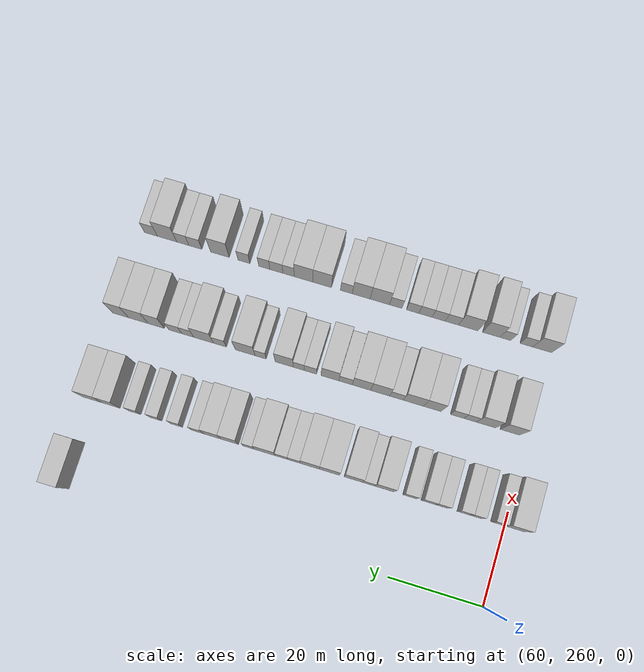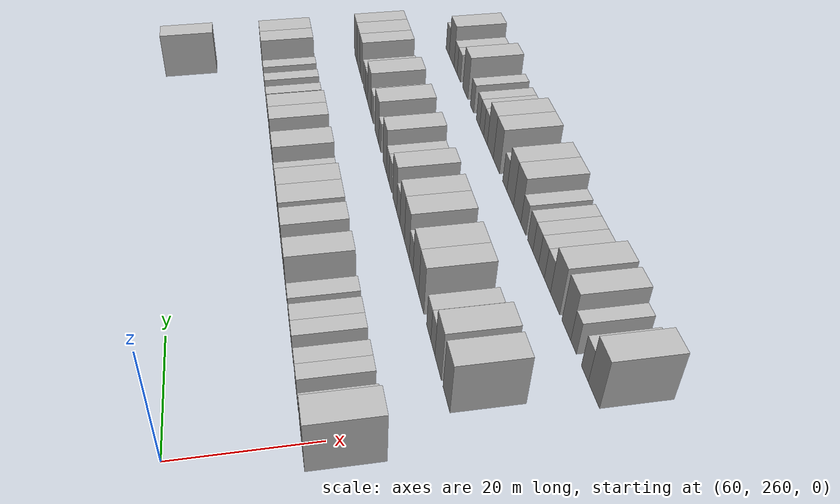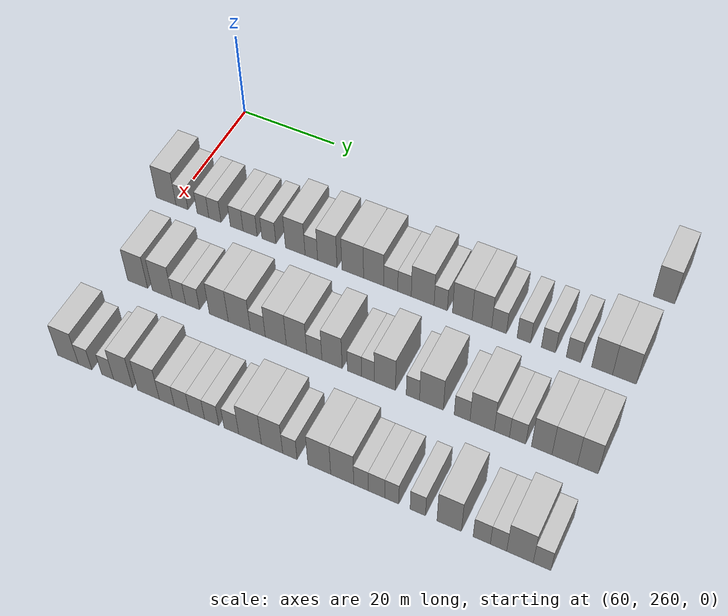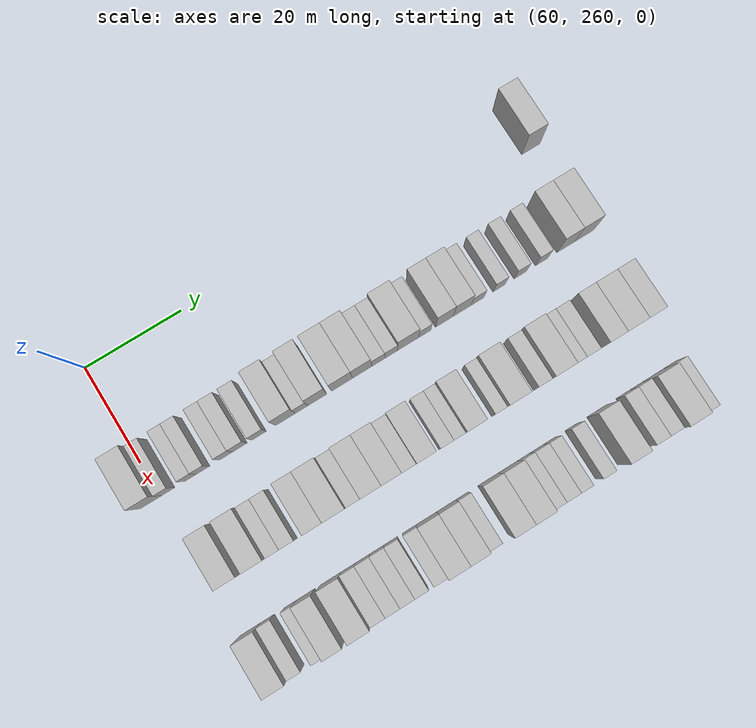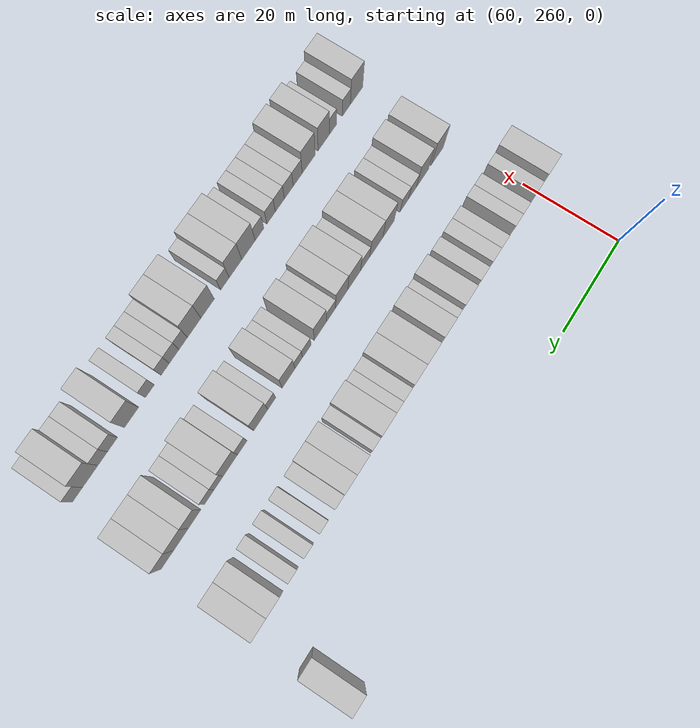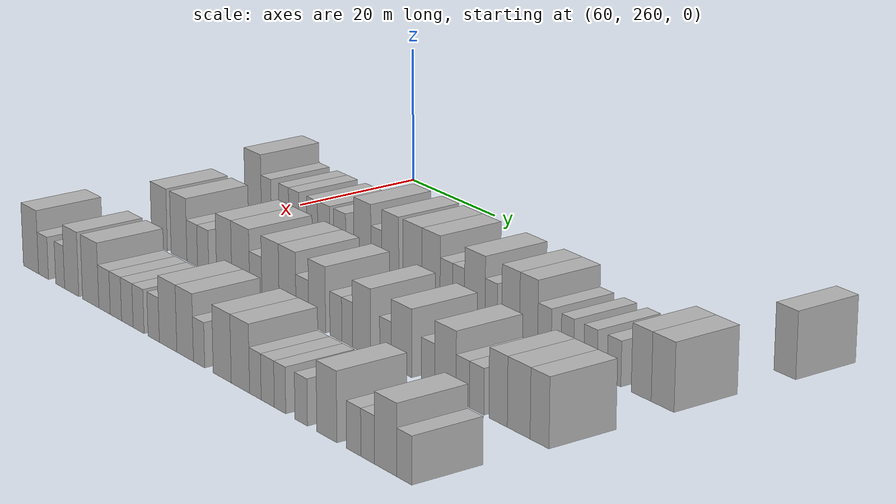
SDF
<sdf version="1.6">
 <world name="default">
  <model name="building_496">
   <static>1</static>
   <pose>63.0000 350.2787 0 0.000000 0.000000 0.000000</pose>
   <link name="link">
    <pose>0 0 4.50 0 0 0</pose>
    <collision name="collision"><geometry><box><size>10.0000 3.9920 9.0000</size></box></geometry></collision>
    <visual name="visual">
     <cast_shadows>0</cast_shadows>
     <geometry><box><size>10.0000 3.9920 9.0000</size></box></geometry>
     <material>
      <script>
       <uri>model://HANNAS_wall/materials/scripts</uri>
       <uri>model://HANNAS_wall/materials/textures</uri>
       <name>vrc/HANNAS_wall</name>
      </script>
     </material>
    </visual>
   </link>
  </model>
  <model name="building_649">
   <static>1</static>
   <pose>82.0000 258.2778 0 0.000000 0.000000 0.000000</pose>
   <link name="link">
    <pose>0 0 4.50 0 0 0</pose>
    <collision name="collision"><geometry><box><size>10.0000 4.3512 9.0000</size></box></geometry></collision>
    <visual name="visual">
     <cast_shadows>0</cast_shadows>
     <geometry><box><size>10.0000 4.3512 9.0000</size></box></geometry>
     <material>
      <script>
       <uri>model://HANNAS_wall/materials/scripts</uri>
       <uri>model://HANNAS_wall/materials/textures</uri>
       <name>vrc/HANNAS_wall</name>
      </script>
     </material>
    </visual>
   </link>
  </model>
  <model name="building_650">
   <static>1</static>
   <pose>82.0000 261.7643 0 0.000000 0.000000 0.000000</pose>
   <link name="link">
    <pose>0 0 3.00 0 0 0</pose>
    <collision name="collision"><geometry><box><size>10.0000 2.6217 6.0000</size></box></geometry></collision>
    <visual name="visual">
     <cast_shadows>0</cast_shadows>
     <geometry><box><size>10.0000 2.6217 6.0000</size></box></geometry>
     <material>
      <script>
       <uri>model://HANNAS_wall/materials/scripts</uri>
       <uri>model://HANNAS_wall/materials/textures</uri>
       <name>vrc/HANNAS_wall</name>
      </script>
     </material>
    </visual>
   </link>
  </model>
  <model name="building_651">
   <static>1</static>
   <pose>82.0000 266.3495 0 0.000000 0.000000 0.000000</pose>
   <link name="link">
    <pose>0 0 3.00 0 0 0</pose>
    <collision name="collision"><geometry><box><size>10.0000 2.5487 6.0000</size></box></geometry></collision>
    <visual name="visual">
     <cast_shadows>0</cast_shadows>
     <geometry><box><size>10.0000 2.5487 6.0000</size></box></geometry>
     <material>
      <script>
       <uri>model://HANNAS_wall/materials/scripts</uri>
       <uri>model://HANNAS_wall/materials/textures</uri>
       <name>vrc/HANNAS_wall</name>
      </script>
     </material>
    </visual>
   </link>
  </model>
  <model name="building_652">
   <static>1</static>
   <pose>82.0000 268.9400 0 0.000000 0.000000 0.000000</pose>
   <link name="link">
    <pose>0 0 3.00 0 0 0</pose>
    <collision name="collision"><geometry><box><size>10.0000 2.6323 6.0000</size></box></geometry></collision>
    <visual name="visual">
     <cast_shadows>0</cast_shadows>
     <geometry><box><size>10.0000 2.6323 6.0000</size></box></geometry>
     <material>
      <script>
       <uri>model://HANNAS_wall/materials/scripts</uri>
       <uri>model://HANNAS_wall/materials/textures</uri>
       <name>vrc/HANNAS_wall</name>
      </script>
     </material>
    </visual>
   </link>
  </model>
  <model name="building_653">
   <static>1</static>
   <pose>82.0000 273.6161 0 0.000000 0.000000 0.000000</pose>
   <link name="link">
    <pose>0 0 3.00 0 0 0</pose>
    <collision name="collision"><geometry><box><size>10.0000 2.7197 6.0000</size></box></geometry></collision>
    <visual name="visual">
     <cast_shadows>0</cast_shadows>
     <geometry><box><size>10.0000 2.7197 6.0000</size></box></geometry>
     <material>
      <script>
       <uri>model://HANNAS_wall/materials/scripts</uri>
       <uri>model://HANNAS_wall/materials/textures</uri>
       <name>vrc/HANNAS_wall</name>
      </script>
     </material>
    </visual>
   </link>
  </model>
  <model name="building_654">
   <static>1</static>
   <pose>82.0000 276.4686 0 0.000000 0.000000 0.000000</pose>
   <link name="link">
    <pose>0 0 3.00 0 0 0</pose>
    <collision name="collision"><geometry><box><size>10.0000 2.9853 6.0000</size></box></geometry></collision>
    <visual name="visual">
     <cast_shadows>0</cast_shadows>
     <geometry><box><size>10.0000 2.9853 6.0000</size></box></geometry>
     <material>
      <script>
       <uri>model://HANNAS_wall/materials/scripts</uri>
       <uri>model://HANNAS_wall/materials/textures</uri>
       <name>vrc/HANNAS_wall</name>
      </script>
     </material>
    </visual>
   </link>
  </model>
  <model name="building_655">
   <static>1</static>
   <pose>82.0000 280.4330 0 0.000000 0.000000 0.000000</pose>
   <link name="link">
    <pose>0 0 3.00 0 0 0</pose>
    <collision name="collision"><geometry><box><size>10.0000 2.9435 6.0000</size></box></geometry></collision>
    <visual name="visual">
     <cast_shadows>0</cast_shadows>
     <geometry><box><size>10.0000 2.9435 6.0000</size></box></geometry>
     <material>
      <script>
       <uri>model://HANNAS_wall/materials/scripts</uri>
       <uri>model://HANNAS_wall/materials/textures</uri>
       <name>vrc/HANNAS_wall</name>
      </script>
     </material>
    </visual>
   </link>
  </model>
  <model name="building_656">
   <static>1</static>
   <pose>82.0000 285.9471 0 0.000000 0.000000 0.000000</pose>
   <link name="link">
    <pose>0 0 4.50 0 0 0</pose>
    <collision name="collision"><geometry><box><size>10.0000 4.0847 9.0000</size></box></geometry></collision>
    <visual name="visual">
     <cast_shadows>0</cast_shadows>
     <geometry><box><size>10.0000 4.0847 9.0000</size></box></geometry>
     <material>
      <script>
       <uri>model://HANNAS_wall/materials/scripts</uri>
       <uri>model://HANNAS_wall/materials/textures</uri>
       <name>vrc/HANNAS_wall</name>
      </script>
     </material>
    </visual>
   </link>
  </model>
  <model name="building_657">
   <static>1</static>
   <pose>82.0000 289.2832 0 0.000000 0.000000 0.000000</pose>
   <link name="link">
    <pose>0 0 3.00 0 0 0</pose>
    <collision name="collision"><geometry><box><size>10.0000 2.5873 6.0000</size></box></geometry></collision>
    <visual name="visual">
     <cast_shadows>0</cast_shadows>
     <geometry><box><size>10.0000 2.5873 6.0000</size></box></geometry>
     <material>
      <script>
       <uri>model://HANNAS_wall/materials/scripts</uri>
       <uri>model://HANNAS_wall/materials/textures</uri>
       <name>vrc/HANNAS_wall</name>
      </script>
     </material>
    </visual>
   </link>
  </model>
  <model name="building_658">
   <static>1</static>
   <pose>82.0000 292.5606 0 0.000000 0.000000 0.000000</pose>
   <link name="link">
    <pose>0 0 4.50 0 0 0</pose>
    <collision name="collision"><geometry><box><size>10.0000 3.9675 9.0000</size></box></geometry></collision>
    <visual name="visual">
     <cast_shadows>0</cast_shadows>
     <geometry><box><size>10.0000 3.9675 9.0000</size></box></geometry>
     <material>
      <script>
       <uri>model://HANNAS_wall/materials/scripts</uri>
       <uri>model://HANNAS_wall/materials/textures</uri>
       <name>vrc/HANNAS_wall</name>
      </script>
     </material>
    </visual>
   </link>
  </model>
  <model name="building_659">
   <static>1</static>
   <pose>82.0000 297.7353 0 0.000000 0.000000 0.000000</pose>
   <link name="link">
    <pose>0 0 4.50 0 0 0</pose>
    <collision name="collision"><geometry><box><size>10.0000 4.3819 9.0000</size></box></geometry></collision>
    <visual name="visual">
     <cast_shadows>0</cast_shadows>
     <geometry><box><size>10.0000 4.3819 9.0000</size></box></geometry>
     <material>
      <script>
       <uri>model://HANNAS_wall/materials/scripts</uri>
       <uri>model://HANNAS_wall/materials/textures</uri>
       <name>vrc/HANNAS_wall</name>
      </script>
     </material>
    </visual>
   </link>
  </model>
  <model name="building_660">
   <static>1</static>
   <pose>82.0000 301.9614 0 0.000000 0.000000 0.000000</pose>
   <link name="link">
    <pose>0 0 4.50 0 0 0</pose>
    <collision name="collision"><geometry><box><size>10.0000 4.0702 9.0000</size></box></geometry></collision>
    <visual name="visual">
     <cast_shadows>0</cast_shadows>
     <geometry><box><size>10.0000 4.0702 9.0000</size></box></geometry>
     <material>
      <script>
       <uri>model://HANNAS_wall/materials/scripts</uri>
       <uri>model://HANNAS_wall/materials/textures</uri>
       <name>vrc/HANNAS_wall</name>
      </script>
     </material>
    </visual>
   </link>
  </model>
  <model name="building_661">
   <static>1</static>
   <pose>82.0000 305.3838 0 0.000000 0.000000 0.000000</pose>
   <link name="link">
    <pose>0 0 3.00 0 0 0</pose>
    <collision name="collision"><geometry><box><size>10.0000 2.7748 6.0000</size></box></geometry></collision>
    <visual name="visual">
     <cast_shadows>0</cast_shadows>
     <geometry><box><size>10.0000 2.7748 6.0000</size></box></geometry>
     <material>
      <script>
       <uri>model://HANNAS_wall/materials/scripts</uri>
       <uri>model://HANNAS_wall/materials/textures</uri>
       <name>vrc/HANNAS_wall</name>
      </script>
     </material>
    </visual>
   </link>
  </model>
  <model name="building_662">
   <static>1</static>
   <pose>82.0000 308.1026 0 0.000000 0.000000 0.000000</pose>
   <link name="link">
    <pose>0 0 3.00 0 0 0</pose>
    <collision name="collision"><geometry><box><size>10.0000 2.6628 6.0000</size></box></geometry></collision>
    <visual name="visual">
     <cast_shadows>0</cast_shadows>
     <geometry><box><size>10.0000 2.6628 6.0000</size></box></geometry>
     <material>
      <script>
       <uri>model://HANNAS_wall/materials/scripts</uri>
       <uri>model://HANNAS_wall/materials/textures</uri>
       <name>vrc/HANNAS_wall</name>
      </script>
     </material>
    </visual>
   </link>
  </model>
  <model name="building_663">
   <static>1</static>
   <pose>82.0000 311.6746 0 0.000000 0.000000 0.000000</pose>
   <link name="link">
    <pose>0 0 4.50 0 0 0</pose>
    <collision name="collision"><geometry><box><size>10.0000 4.4812 9.0000</size></box></geometry></collision>
    <visual name="visual">
     <cast_shadows>0</cast_shadows>
     <geometry><box><size>10.0000 4.4812 9.0000</size></box></geometry>
     <material>
      <script>
       <uri>model://HANNAS_wall/materials/scripts</uri>
       <uri>model://HANNAS_wall/materials/textures</uri>
       <name>vrc/HANNAS_wall</name>
      </script>
     </material>
    </visual>
   </link>
  </model>
  <model name="building_664">
   <static>1</static>
   <pose>82.0000 315.2005 0 0.000000 0.000000 0.000000</pose>
   <link name="link">
    <pose>0 0 3.00 0 0 0</pose>
    <collision name="collision"><geometry><box><size>10.0000 2.5705 6.0000</size></box></geometry></collision>
    <visual name="visual">
     <cast_shadows>0</cast_shadows>
     <geometry><box><size>10.0000 2.5705 6.0000</size></box></geometry>
     <material>
      <script>
       <uri>model://HANNAS_wall/materials/scripts</uri>
       <uri>model://HANNAS_wall/materials/textures</uri>
       <name>vrc/HANNAS_wall</name>
      </script>
     </material>
    </visual>
   </link>
  </model>
  <model name="building_665">
   <static>1</static>
   <pose>82.0000 319.3725 0 0.000000 0.000000 0.000000</pose>
   <link name="link">
    <pose>0 0 4.50 0 0 0</pose>
    <collision name="collision"><geometry><box><size>10.0000 3.7735 9.0000</size></box></geometry></collision>
    <visual name="visual">
     <cast_shadows>0</cast_shadows>
     <geometry><box><size>10.0000 3.7735 9.0000</size></box></geometry>
     <material>
      <script>
       <uri>model://HANNAS_wall/materials/scripts</uri>
       <uri>model://HANNAS_wall/materials/textures</uri>
       <name>vrc/HANNAS_wall</name>
      </script>
     </material>
    </visual>
   </link>
  </model>
  <model name="building_666">
   <static>1</static>
   <pose>82.0000 323.1352 0 0.000000 0.000000 0.000000</pose>
   <link name="link">
    <pose>0 0 4.50 0 0 0</pose>
    <collision name="collision"><geometry><box><size>10.0000 3.7519 9.0000</size></box></geometry></collision>
    <visual name="visual">
     <cast_shadows>0</cast_shadows>
     <geometry><box><size>10.0000 3.7519 9.0000</size></box></geometry>
     <material>
      <script>
       <uri>model://HANNAS_wall/materials/scripts</uri>
       <uri>model://HANNAS_wall/materials/textures</uri>
       <name>vrc/HANNAS_wall</name>
      </script>
     </material>
    </visual>
   </link>
  </model>
  <model name="building_667">
   <static>1</static>
   <pose>82.0000 326.4109 0 0.000000 0.000000 0.000000</pose>
   <link name="link">
    <pose>0 0 3.00 0 0 0</pose>
    <collision name="collision"><geometry><box><size>10.0000 2.7996 6.0000</size></box></geometry></collision>
    <visual name="visual">
     <cast_shadows>0</cast_shadows>
     <geometry><box><size>10.0000 2.7996 6.0000</size></box></geometry>
     <material>
      <script>
       <uri>model://HANNAS_wall/materials/scripts</uri>
       <uri>model://HANNAS_wall/materials/textures</uri>
       <name>vrc/HANNAS_wall</name>
      </script>
     </material>
    </visual>
   </link>
  </model>
  <model name="building_668">
   <static>1</static>
   <pose>82.0000 331.0889 0 0.000000 0.000000 0.000000</pose>
   <link name="link">
    <pose>0 0 3.00 0 0 0</pose>
    <collision name="collision"><geometry><box><size>10.0000 2.5564 6.0000</size></box></geometry></collision>
    <visual name="visual">
     <cast_shadows>0</cast_shadows>
     <geometry><box><size>10.0000 2.5564 6.0000</size></box></geometry>
     <material>
      <script>
       <uri>model://HANNAS_wall/materials/scripts</uri>
       <uri>model://HANNAS_wall/materials/textures</uri>
       <name>vrc/HANNAS_wall</name>
      </script>
     </material>
    </visual>
   </link>
  </model>
  <model name="building_669">
   <static>1</static>
   <pose>82.0000 335.6795 0 0.000000 0.000000 0.000000</pose>
   <link name="link">
    <pose>0 0 3.00 0 0 0</pose>
    <collision name="collision"><geometry><box><size>10.0000 2.6247 6.0000</size></box></geometry></collision>
    <visual name="visual">
     <cast_shadows>0</cast_shadows>
     <geometry><box><size>10.0000 2.6247 6.0000</size></box></geometry>
     <material>
      <script>
       <uri>model://HANNAS_wall/materials/scripts</uri>
       <uri>model://HANNAS_wall/materials/textures</uri>
       <name>vrc/HANNAS_wall</name>
      </script>
     </material>
    </visual>
   </link>
  </model>
  <model name="building_670">
   <static>1</static>
   <pose>82.0000 340.3127 0 0.000000 0.000000 0.000000</pose>
   <link name="link">
    <pose>0 0 3.00 0 0 0</pose>
    <collision name="collision"><geometry><box><size>10.0000 2.6416 6.0000</size></box></geometry></collision>
    <visual name="visual">
     <cast_shadows>0</cast_shadows>
     <geometry><box><size>10.0000 2.6416 6.0000</size></box></geometry>
     <material>
      <script>
       <uri>model://HANNAS_wall/materials/scripts</uri>
       <uri>model://HANNAS_wall/materials/textures</uri>
       <name>vrc/HANNAS_wall</name>
      </script>
     </material>
    </visual>
   </link>
  </model>
  <model name="building_671">
   <static>1</static>
   <pose>82.0000 345.5279 0 0.000000 0.000000 0.000000</pose>
   <link name="link">
    <pose>0 0 4.50 0 0 0</pose>
    <collision name="collision"><geometry><box><size>10.0000 3.7888 9.0000</size></box></geometry></collision>
    <visual name="visual">
     <cast_shadows>0</cast_shadows>
     <geometry><box><size>10.0000 3.7888 9.0000</size></box></geometry>
     <material>
      <script>
       <uri>model://HANNAS_wall/materials/scripts</uri>
       <uri>model://HANNAS_wall/materials/textures</uri>
       <name>vrc/HANNAS_wall</name>
      </script>
     </material>
    </visual>
   </link>
  </model>
  <model name="building_672">
   <static>1</static>
   <pose>82.0000 349.5609 0 0.000000 0.000000 0.000000</pose>
   <link name="link">
    <pose>0 0 4.50 0 0 0</pose>
    <collision name="collision"><geometry><box><size>10.0000 4.2771 9.0000</size></box></geometry></collision>
    <visual name="visual">
     <cast_shadows>0</cast_shadows>
     <geometry><box><size>10.0000 4.2771 9.0000</size></box></geometry>
     <material>
      <script>
       <uri>model://HANNAS_wall/materials/scripts</uri>
       <uri>model://HANNAS_wall/materials/textures</uri>
       <name>vrc/HANNAS_wall</name>
      </script>
     </material>
    </visual>
   </link>
  </model>
  <model name="building_822">
   <static>1</static>
   <pose>101.0000 264.0049 0 0.000000 0.000000 0.000000</pose>
   <link name="link">
    <pose>0 0 4.50 0 0 0</pose>
    <collision name="collision"><geometry><box><size>10.0000 4.1957 9.0000</size></box></geometry></collision>
    <visual name="visual">
     <cast_shadows>0</cast_shadows>
     <geometry><box><size>10.0000 4.1957 9.0000</size></box></geometry>
     <material>
      <script>
       <uri>model://HANNAS_wall/materials/scripts</uri>
       <uri>model://HANNAS_wall/materials/textures</uri>
       <name>vrc/HANNAS_wall</name>
      </script>
     </material>
    </visual>
   </link>
  </model>
  <model name="building_823">
   <static>1</static>
   <pose>101.0000 269.1929 0 0.000000 0.000000 0.000000</pose>
   <link name="link">
    <pose>0 0 4.50 0 0 0</pose>
    <collision name="collision"><geometry><box><size>10.0000 4.1804 9.0000</size></box></geometry></collision>
    <visual name="visual">
     <cast_shadows>0</cast_shadows>
     <geometry><box><size>10.0000 4.1804 9.0000</size></box></geometry>
     <material>
      <script>
       <uri>model://HANNAS_wall/materials/scripts</uri>
       <uri>model://HANNAS_wall/materials/textures</uri>
       <name>vrc/HANNAS_wall</name>
      </script>
     </material>
    </visual>
   </link>
  </model>
  <model name="building_824">
   <static>1</static>
   <pose>101.0000 272.6588 0 0.000000 0.000000 0.000000</pose>
   <link name="link">
    <pose>0 0 3.00 0 0 0</pose>
    <collision name="collision"><geometry><box><size>10.0000 2.7513 6.0000</size></box></geometry></collision>
    <visual name="visual">
     <cast_shadows>0</cast_shadows>
     <geometry><box><size>10.0000 2.7513 6.0000</size></box></geometry>
     <material>
      <script>
       <uri>model://HANNAS_wall/materials/scripts</uri>
       <uri>model://HANNAS_wall/materials/textures</uri>
       <name>vrc/HANNAS_wall</name>
      </script>
     </material>
    </visual>
   </link>
  </model>
  <model name="building_825">
   <static>1</static>
   <pose>101.0000 275.4788 0 0.000000 0.000000 0.000000</pose>
   <link name="link">
    <pose>0 0 3.00 0 0 0</pose>
    <collision name="collision"><geometry><box><size>10.0000 2.8886 6.0000</size></box></geometry></collision>
    <visual name="visual">
     <cast_shadows>0</cast_shadows>
     <geometry><box><size>10.0000 2.8886 6.0000</size></box></geometry>
     <material>
      <script>
       <uri>model://HANNAS_wall/materials/scripts</uri>
       <uri>model://HANNAS_wall/materials/textures</uri>
       <name>vrc/HANNAS_wall</name>
      </script>
     </material>
    </visual>
   </link>
  </model>
  <model name="building_826">
   <static>1</static>
   <pose>101.0000 280.8475 0 0.000000 0.000000 0.000000</pose>
   <link name="link">
    <pose>0 0 4.50 0 0 0</pose>
    <collision name="collision"><geometry><box><size>10.0000 3.8488 9.0000</size></box></geometry></collision>
    <visual name="visual">
     <cast_shadows>0</cast_shadows>
     <geometry><box><size>10.0000 3.8488 9.0000</size></box></geometry>
     <material>
      <script>
       <uri>model://HANNAS_wall/materials/scripts</uri>
       <uri>model://HANNAS_wall/materials/textures</uri>
       <name>vrc/HANNAS_wall</name>
      </script>
     </material>
    </visual>
   </link>
  </model>
  <model name="building_827">
   <static>1</static>
   <pose>101.0000 284.9953 0 0.000000 0.000000 0.000000</pose>
   <link name="link">
    <pose>0 0 4.50 0 0 0</pose>
    <collision name="collision"><geometry><box><size>10.0000 4.4469 9.0000</size></box></geometry></collision>
    <visual name="visual">
     <cast_shadows>0</cast_shadows>
     <geometry><box><size>10.0000 4.4469 9.0000</size></box></geometry>
     <material>
      <script>
       <uri>model://HANNAS_wall/materials/scripts</uri>
       <uri>model://HANNAS_wall/materials/textures</uri>
       <name>vrc/HANNAS_wall</name>
      </script>
     </material>
    </visual>
   </link>
  </model>
  <model name="building_828">
   <static>1</static>
   <pose>101.0000 288.7131 0 0.000000 0.000000 0.000000</pose>
   <link name="link">
    <pose>0 0 3.00 0 0 0</pose>
    <collision name="collision"><geometry><box><size>10.0000 2.9888 6.0000</size></box></geometry></collision>
    <visual name="visual">
     <cast_shadows>0</cast_shadows>
     <geometry><box><size>10.0000 2.9888 6.0000</size></box></geometry>
     <material>
      <script>
       <uri>model://HANNAS_wall/materials/scripts</uri>
       <uri>model://HANNAS_wall/materials/textures</uri>
       <name>vrc/HANNAS_wall</name>
      </script>
     </material>
    </visual>
   </link>
  </model>
  <model name="building_829">
   <static>1</static>
   <pose>101.0000 292.2936 0 0.000000 0.000000 0.000000</pose>
   <link name="link">
    <pose>0 0 4.50 0 0 0</pose>
    <collision name="collision"><geometry><box><size>10.0000 4.1722 9.0000</size></box></geometry></collision>
    <visual name="visual">
     <cast_shadows>0</cast_shadows>
     <geometry><box><size>10.0000 4.1722 9.0000</size></box></geometry>
     <material>
      <script>
       <uri>model://HANNAS_wall/materials/scripts</uri>
       <uri>model://HANNAS_wall/materials/textures</uri>
       <name>vrc/HANNAS_wall</name>
      </script>
     </material>
    </visual>
   </link>
  </model>
  <model name="building_830">
   <static>1</static>
   <pose>101.0000 296.3869 0 0.000000 0.000000 0.000000</pose>
   <link name="link">
    <pose>0 0 4.50 0 0 0</pose>
    <collision name="collision"><geometry><box><size>10.0000 4.0145 9.0000</size></box></geometry></collision>
    <visual name="visual">
     <cast_shadows>0</cast_shadows>
     <geometry><box><size>10.0000 4.0145 9.0000</size></box></geometry>
     <material>
      <script>
       <uri>model://HANNAS_wall/materials/scripts</uri>
       <uri>model://HANNAS_wall/materials/textures</uri>
       <name>vrc/HANNAS_wall</name>
      </script>
     </material>
    </visual>
   </link>
  </model>
  <model name="building_831">
   <static>1</static>
   <pose>101.0000 299.8763 0 0.000000 0.000000 0.000000</pose>
   <link name="link">
    <pose>0 0 3.00 0 0 0</pose>
    <collision name="collision"><geometry><box><size>10.0000 2.9643 6.0000</size></box></geometry></collision>
    <visual name="visual">
     <cast_shadows>0</cast_shadows>
     <geometry><box><size>10.0000 2.9643 6.0000</size></box></geometry>
     <material>
      <script>
       <uri>model://HANNAS_wall/materials/scripts</uri>
       <uri>model://HANNAS_wall/materials/textures</uri>
       <name>vrc/HANNAS_wall</name>
      </script>
     </material>
    </visual>
   </link>
  </model>
  <model name="building_832">
   <static>1</static>
   <pose>101.0000 303.3162 0 0.000000 0.000000 0.000000</pose>
   <link name="link">
    <pose>0 0 4.50 0 0 0</pose>
    <collision name="collision"><geometry><box><size>10.0000 3.9154 9.0000</size></box></geometry></collision>
    <visual name="visual">
     <cast_shadows>0</cast_shadows>
     <geometry><box><size>10.0000 3.9154 9.0000</size></box></geometry>
     <material>
      <script>
       <uri>model://HANNAS_wall/materials/scripts</uri>
       <uri>model://HANNAS_wall/materials/textures</uri>
       <name>vrc/HANNAS_wall</name>
      </script>
     </material>
    </visual>
   </link>
  </model>
  <model name="building_833">
   <static>1</static>
   <pose>101.0000 307.6289 0 0.000000 0.000000 0.000000</pose>
   <link name="link">
    <pose>0 0 3.00 0 0 0</pose>
    <collision name="collision"><geometry><box><size>10.0000 2.7099 6.0000</size></box></geometry></collision>
    <visual name="visual">
     <cast_shadows>0</cast_shadows>
     <geometry><box><size>10.0000 2.7099 6.0000</size></box></geometry>
     <material>
      <script>
       <uri>model://HANNAS_wall/materials/scripts</uri>
       <uri>model://HANNAS_wall/materials/textures</uri>
       <name>vrc/HANNAS_wall</name>
      </script>
     </material>
    </visual>
   </link>
  </model>
  <model name="building_834">
   <static>1</static>
   <pose>101.0000 310.1881 0 0.000000 0.000000 0.000000</pose>
   <link name="link">
    <pose>0 0 3.00 0 0 0</pose>
    <collision name="collision"><geometry><box><size>10.0000 2.4087 6.0000</size></box></geometry></collision>
    <visual name="visual">
     <cast_shadows>0</cast_shadows>
     <geometry><box><size>10.0000 2.4087 6.0000</size></box></geometry>
     <material>
      <script>
       <uri>model://HANNAS_wall/materials/scripts</uri>
       <uri>model://HANNAS_wall/materials/textures</uri>
       <name>vrc/HANNAS_wall</name>
      </script>
     </material>
    </visual>
   </link>
  </model>
  <model name="building_835">
   <static>1</static>
   <pose>101.0000 313.4027 0 0.000000 0.000000 0.000000</pose>
   <link name="link">
    <pose>0 0 4.50 0 0 0</pose>
    <collision name="collision"><geometry><box><size>10.0000 4.0206 9.0000</size></box></geometry></collision>
    <visual name="visual">
     <cast_shadows>0</cast_shadows>
     <geometry><box><size>10.0000 4.0206 9.0000</size></box></geometry>
     <material>
      <script>
       <uri>model://HANNAS_wall/materials/scripts</uri>
       <uri>model://HANNAS_wall/materials/textures</uri>
       <name>vrc/HANNAS_wall</name>
      </script>
     </material>
    </visual>
   </link>
  </model>
  <model name="building_836">
   <static>1</static>
   <pose>101.0000 318.6479 0 0.000000 0.000000 0.000000</pose>
   <link name="link">
    <pose>0 0 3.00 0 0 0</pose>
    <collision name="collision"><geometry><box><size>10.0000 2.4697 6.0000</size></box></geometry></collision>
    <visual name="visual">
     <cast_shadows>0</cast_shadows>
     <geometry><box><size>10.0000 2.4697 6.0000</size></box></geometry>
     <material>
      <script>
       <uri>model://HANNAS_wall/materials/scripts</uri>
       <uri>model://HANNAS_wall/materials/textures</uri>
       <name>vrc/HANNAS_wall</name>
      </script>
     </material>
    </visual>
   </link>
  </model>
  <model name="building_837">
   <static>1</static>
   <pose>101.0000 322.0832 0 0.000000 0.000000 0.000000</pose>
   <link name="link">
    <pose>0 0 4.50 0 0 0</pose>
    <collision name="collision"><geometry><box><size>10.0000 4.4010 9.0000</size></box></geometry></collision>
    <visual name="visual">
     <cast_shadows>0</cast_shadows>
     <geometry><box><size>10.0000 4.4010 9.0000</size></box></geometry>
     <material>
      <script>
       <uri>model://HANNAS_wall/materials/scripts</uri>
       <uri>model://HANNAS_wall/materials/textures</uri>
       <name>vrc/HANNAS_wall</name>
      </script>
     </material>
    </visual>
   </link>
  </model>
  <model name="building_838">
   <static>1</static>
   <pose>101.0000 327.7132 0 0.000000 0.000000 0.000000</pose>
   <link name="link">
    <pose>0 0 3.00 0 0 0</pose>
    <collision name="collision"><geometry><box><size>10.0000 2.8591 6.0000</size></box></geometry></collision>
    <visual name="visual">
     <cast_shadows>0</cast_shadows>
     <geometry><box><size>10.0000 2.8591 6.0000</size></box></geometry>
     <material>
      <script>
       <uri>model://HANNAS_wall/materials/scripts</uri>
       <uri>model://HANNAS_wall/materials/textures</uri>
       <name>vrc/HANNAS_wall</name>
      </script>
     </material>
    </visual>
   </link>
  </model>
  <model name="building_839">
   <static>1</static>
   <pose>101.0000 331.3469 0 0.000000 0.000000 0.000000</pose>
   <link name="link">
    <pose>0 0 4.50 0 0 0</pose>
    <collision name="collision"><geometry><box><size>10.0000 4.4081 9.0000</size></box></geometry></collision>
    <visual name="visual">
     <cast_shadows>0</cast_shadows>
     <geometry><box><size>10.0000 4.4081 9.0000</size></box></geometry>
     <material>
      <script>
       <uri>model://HANNAS_wall/materials/scripts</uri>
       <uri>model://HANNAS_wall/materials/textures</uri>
       <name>vrc/HANNAS_wall</name>
      </script>
     </material>
    </visual>
   </link>
  </model>
  <model name="building_840">
   <static>1</static>
   <pose>101.0000 334.9047 0 0.000000 0.000000 0.000000</pose>
   <link name="link">
    <pose>0 0 3.00 0 0 0</pose>
    <collision name="collision"><geometry><box><size>10.0000 2.7076 6.0000</size></box></geometry></collision>
    <visual name="visual">
     <cast_shadows>0</cast_shadows>
     <geometry><box><size>10.0000 2.7076 6.0000</size></box></geometry>
     <material>
      <script>
       <uri>model://HANNAS_wall/materials/scripts</uri>
       <uri>model://HANNAS_wall/materials/textures</uri>
       <name>vrc/HANNAS_wall</name>
      </script>
     </material>
    </visual>
   </link>
  </model>
  <model name="building_841">
   <static>1</static>
   <pose>101.0000 337.7123 0 0.000000 0.000000 0.000000</pose>
   <link name="link">
    <pose>0 0 3.00 0 0 0</pose>
    <collision name="collision"><geometry><box><size>10.0000 2.9075 6.0000</size></box></geometry></collision>
    <visual name="visual">
     <cast_shadows>0</cast_shadows>
     <geometry><box><size>10.0000 2.9075 6.0000</size></box></geometry>
     <material>
      <script>
       <uri>model://HANNAS_wall/materials/scripts</uri>
       <uri>model://HANNAS_wall/materials/textures</uri>
       <name>vrc/HANNAS_wall</name>
      </script>
     </material>
    </visual>
   </link>
  </model>
  <model name="building_842">
   <static>1</static>
   <pose>101.0000 341.9755 0 0.000000 0.000000 0.000000</pose>
   <link name="link">
    <pose>0 0 4.50 0 0 0</pose>
    <collision name="collision"><geometry><box><size>10.0000 3.6190 9.0000</size></box></geometry></collision>
    <visual name="visual">
     <cast_shadows>0</cast_shadows>
     <geometry><box><size>10.0000 3.6190 9.0000</size></box></geometry>
     <material>
      <script>
       <uri>model://HANNAS_wall/materials/scripts</uri>
       <uri>model://HANNAS_wall/materials/textures</uri>
       <name>vrc/HANNAS_wall</name>
      </script>
     </material>
    </visual>
   </link>
  </model>
  <model name="building_843">
   <static>1</static>
   <pose>101.0000 345.9929 0 0.000000 0.000000 0.000000</pose>
   <link name="link">
    <pose>0 0 4.50 0 0 0</pose>
    <collision name="collision"><geometry><box><size>10.0000 4.4158 9.0000</size></box></geometry></collision>
    <visual name="visual">
     <cast_shadows>0</cast_shadows>
     <geometry><box><size>10.0000 4.4158 9.0000</size></box></geometry>
     <material>
      <script>
       <uri>model://HANNAS_wall/materials/scripts</uri>
       <uri>model://HANNAS_wall/materials/textures</uri>
       <name>vrc/HANNAS_wall</name>
      </script>
     </material>
    </visual>
   </link>
  </model>
  <model name="building_844">
   <static>1</static>
   <pose>101.0000 350.0023 0 0.000000 0.000000 0.000000</pose>
   <link name="link">
    <pose>0 0 4.50 0 0 0</pose>
    <collision name="collision"><geometry><box><size>10.0000 3.6030 9.0000</size></box></geometry></collision>
    <visual name="visual">
     <cast_shadows>0</cast_shadows>
     <geometry><box><size>10.0000 3.6030 9.0000</size></box></geometry>
     <material>
      <script>
       <uri>model://HANNAS_wall/materials/scripts</uri>
       <uri>model://HANNAS_wall/materials/textures</uri>
       <name>vrc/HANNAS_wall</name>
      </script>
     </material>
    </visual>
   </link>
  </model>
  <model name="building_990">
   <static>1</static>
   <pose>120.0000 261.9463 0 0.000000 0.000000 0.000000</pose>
   <link name="link">
    <pose>0 0 4.50 0 0 0</pose>
    <collision name="collision"><geometry><box><size>10.0000 4.2396 9.0000</size></box></geometry></collision>
    <visual name="visual">
     <cast_shadows>0</cast_shadows>
     <geometry><box><size>10.0000 4.2396 9.0000</size></box></geometry>
     <material>
      <script>
       <uri>model://HANNAS_wall/materials/scripts</uri>
       <uri>model://HANNAS_wall/materials/textures</uri>
       <name>vrc/HANNAS_wall</name>
      </script>
     </material>
    </visual>
   </link>
  </model>
  <model name="building_991">
   <static>1</static>
   <pose>120.0000 265.4389 0 0.000000 0.000000 0.000000</pose>
   <link name="link">
    <pose>0 0 3.00 0 0 0</pose>
    <collision name="collision"><geometry><box><size>10.0000 2.7456 6.0000</size></box></geometry></collision>
    <visual name="visual">
     <cast_shadows>0</cast_shadows>
     <geometry><box><size>10.0000 2.7456 6.0000</size></box></geometry>
     <material>
      <script>
       <uri>model://HANNAS_wall/materials/scripts</uri>
       <uri>model://HANNAS_wall/materials/textures</uri>
       <name>vrc/HANNAS_wall</name>
      </script>
     </material>
    </visual>
   </link>
  </model>
  <model name="building_992">
   <static>1</static>
   <pose>120.0000 270.0221 0 0.000000 0.000000 0.000000</pose>
   <link name="link">
    <pose>0 0 3.00 0 0 0</pose>
    <collision name="collision"><geometry><box><size>10.0000 2.4209 6.0000</size></box></geometry></collision>
    <visual name="visual">
     <cast_shadows>0</cast_shadows>
     <geometry><box><size>10.0000 2.4209 6.0000</size></box></geometry>
     <material>
      <script>
       <uri>model://HANNAS_wall/materials/scripts</uri>
       <uri>model://HANNAS_wall/materials/textures</uri>
       <name>vrc/HANNAS_wall</name>
      </script>
     </material>
    </visual>
   </link>
  </model>
  <model name="building_993">
   <static>1</static>
   <pose>120.0000 273.1448 0 0.000000 0.000000 0.000000</pose>
   <link name="link">
    <pose>0 0 4.50 0 0 0</pose>
    <collision name="collision"><geometry><box><size>10.0000 3.8245 9.0000</size></box></geometry></collision>
    <visual name="visual">
     <cast_shadows>0</cast_shadows>
     <geometry><box><size>10.0000 3.8245 9.0000</size></box></geometry>
     <material>
      <script>
       <uri>model://HANNAS_wall/materials/scripts</uri>
       <uri>model://HANNAS_wall/materials/textures</uri>
       <name>vrc/HANNAS_wall</name>
      </script>
     </material>
    </visual>
   </link>
  </model>
  <model name="building_994">
   <static>1</static>
   <pose>120.0000 278.2075 0 0.000000 0.000000 0.000000</pose>
   <link name="link">
    <pose>0 0 4.50 0 0 0</pose>
    <collision name="collision"><geometry><box><size>10.0000 4.3010 9.0000</size></box></geometry></collision>
    <visual name="visual">
     <cast_shadows>0</cast_shadows>
     <geometry><box><size>10.0000 4.3010 9.0000</size></box></geometry>
     <material>
      <script>
       <uri>model://HANNAS_wall/materials/scripts</uri>
       <uri>model://HANNAS_wall/materials/textures</uri>
       <name>vrc/HANNAS_wall</name>
      </script>
     </material>
    </visual>
   </link>
  </model>
  <model name="building_995">
   <static>1</static>
   <pose>120.0000 281.8464 0 0.000000 0.000000 0.000000</pose>
   <link name="link">
    <pose>0 0 3.00 0 0 0</pose>
    <collision name="collision"><geometry><box><size>10.0000 2.9767 6.0000</size></box></geometry></collision>
    <visual name="visual">
     <cast_shadows>0</cast_shadows>
     <geometry><box><size>10.0000 2.9767 6.0000</size></box></geometry>
     <material>
      <script>
       <uri>model://HANNAS_wall/materials/scripts</uri>
       <uri>model://HANNAS_wall/materials/textures</uri>
       <name>vrc/HANNAS_wall</name>
      </script>
     </material>
    </visual>
   </link>
  </model>
  <model name="building_996">
   <static>1</static>
   <pose>120.0000 284.7942 0 0.000000 0.000000 0.000000</pose>
   <link name="link">
    <pose>0 0 3.00 0 0 0</pose>
    <collision name="collision"><geometry><box><size>10.0000 2.9189 6.0000</size></box></geometry></collision>
    <visual name="visual">
     <cast_shadows>0</cast_shadows>
     <geometry><box><size>10.0000 2.9189 6.0000</size></box></geometry>
     <material>
      <script>
       <uri>model://HANNAS_wall/materials/scripts</uri>
       <uri>model://HANNAS_wall/materials/textures</uri>
       <name>vrc/HANNAS_wall</name>
      </script>
     </material>
    </visual>
   </link>
  </model>
  <model name="building_997">
   <static>1</static>
   <pose>120.0000 287.7222 0 0.000000 0.000000 0.000000</pose>
   <link name="link">
    <pose>0 0 3.00 0 0 0</pose>
    <collision name="collision"><geometry><box><size>10.0000 2.9370 6.0000</size></box></geometry></collision>
    <visual name="visual">
     <cast_shadows>0</cast_shadows>
     <geometry><box><size>10.0000 2.9370 6.0000</size></box></geometry>
     <material>
      <script>
       <uri>model://HANNAS_wall/materials/scripts</uri>
       <uri>model://HANNAS_wall/materials/textures</uri>
       <name>vrc/HANNAS_wall</name>
      </script>
     </material>
    </visual>
   </link>
  </model>
  <model name="building_998">
   <static>1</static>
   <pose>120.0000 290.5683 0 0.000000 0.000000 0.000000</pose>
   <link name="link">
    <pose>0 0 3.00 0 0 0</pose>
    <collision name="collision"><geometry><box><size>10.0000 2.7554 6.0000</size></box></geometry></collision>
    <visual name="visual">
     <cast_shadows>0</cast_shadows>
     <geometry><box><size>10.0000 2.7554 6.0000</size></box></geometry>
     <material>
      <script>
       <uri>model://HANNAS_wall/materials/scripts</uri>
       <uri>model://HANNAS_wall/materials/textures</uri>
       <name>vrc/HANNAS_wall</name>
      </script>
     </material>
    </visual>
   </link>
  </model>
  <model name="building_999">
   <static>1</static>
   <pose>120.0000 294.3425 0 0.000000 0.000000 0.000000</pose>
   <link name="link">
    <pose>0 0 3.00 0 0 0</pose>
    <collision name="collision"><geometry><box><size>10.0000 2.7929 6.0000</size></box></geometry></collision>
    <visual name="visual">
     <cast_shadows>0</cast_shadows>
     <geometry><box><size>10.0000 2.7929 6.0000</size></box></geometry>
     <material>
      <script>
       <uri>model://HANNAS_wall/materials/scripts</uri>
       <uri>model://HANNAS_wall/materials/textures</uri>
       <name>vrc/HANNAS_wall</name>
      </script>
     </material>
    </visual>
   </link>
  </model>
  <model name="building_1000">
   <static>1</static>
   <pose>120.0000 297.8802 0 0.000000 0.000000 0.000000</pose>
   <link name="link">
    <pose>0 0 4.50 0 0 0</pose>
    <collision name="collision"><geometry><box><size>10.0000 4.2826 9.0000</size></box></geometry></collision>
    <visual name="visual">
     <cast_shadows>0</cast_shadows>
     <geometry><box><size>10.0000 4.2826 9.0000</size></box></geometry>
     <material>
      <script>
       <uri>model://HANNAS_wall/materials/scripts</uri>
       <uri>model://HANNAS_wall/materials/textures</uri>
       <name>vrc/HANNAS_wall</name>
      </script>
     </material>
    </visual>
   </link>
  </model>
  <model name="building_1001">
   <static>1</static>
   <pose>120.0000 302.0175 0 0.000000 0.000000 0.000000</pose>
   <link name="link">
    <pose>0 0 4.50 0 0 0</pose>
    <collision name="collision"><geometry><box><size>10.0000 3.9919 9.0000</size></box></geometry></collision>
    <visual name="visual">
     <cast_shadows>0</cast_shadows>
     <geometry><box><size>10.0000 3.9919 9.0000</size></box></geometry>
     <material>
      <script>
       <uri>model://HANNAS_wall/materials/scripts</uri>
       <uri>model://HANNAS_wall/materials/textures</uri>
       <name>vrc/HANNAS_wall</name>
      </script>
     </material>
    </visual>
   </link>
  </model>
  <model name="building_1002">
   <static>1</static>
   <pose>120.0000 305.3472 0 0.000000 0.000000 0.000000</pose>
   <link name="link">
    <pose>0 0 3.00 0 0 0</pose>
    <collision name="collision"><geometry><box><size>10.0000 2.6674 6.0000</size></box></geometry></collision>
    <visual name="visual">
     <cast_shadows>0</cast_shadows>
     <geometry><box><size>10.0000 2.6674 6.0000</size></box></geometry>
     <material>
      <script>
       <uri>model://HANNAS_wall/materials/scripts</uri>
       <uri>model://HANNAS_wall/materials/textures</uri>
       <name>vrc/HANNAS_wall</name>
      </script>
     </material>
    </visual>
   </link>
  </model>
  <model name="building_1003">
   <static>1</static>
   <pose>120.0000 310.7689 0 0.000000 0.000000 0.000000</pose>
   <link name="link">
    <pose>0 0 4.50 0 0 0</pose>
    <collision name="collision"><geometry><box><size>10.0000 4.1760 9.0000</size></box></geometry></collision>
    <visual name="visual">
     <cast_shadows>0</cast_shadows>
     <geometry><box><size>10.0000 4.1760 9.0000</size></box></geometry>
     <material>
      <script>
       <uri>model://HANNAS_wall/materials/scripts</uri>
       <uri>model://HANNAS_wall/materials/textures</uri>
       <name>vrc/HANNAS_wall</name>
      </script>
     </material>
    </visual>
   </link>
  </model>
  <model name="building_1004">
   <static>1</static>
   <pose>120.0000 314.9484 0 0.000000 0.000000 0.000000</pose>
   <link name="link">
    <pose>0 0 4.50 0 0 0</pose>
    <collision name="collision"><geometry><box><size>10.0000 4.1829 9.0000</size></box></geometry></collision>
    <visual name="visual">
     <cast_shadows>0</cast_shadows>
     <geometry><box><size>10.0000 4.1829 9.0000</size></box></geometry>
     <material>
      <script>
       <uri>model://HANNAS_wall/materials/scripts</uri>
       <uri>model://HANNAS_wall/materials/textures</uri>
       <name>vrc/HANNAS_wall</name>
      </script>
     </material>
    </visual>
   </link>
  </model>
  <model name="building_1005">
   <static>1</static>
   <pose>120.0000 318.3393 0 0.000000 0.000000 0.000000</pose>
   <link name="link">
    <pose>0 0 3.00 0 0 0</pose>
    <collision name="collision"><geometry><box><size>10.0000 2.5989 6.0000</size></box></geometry></collision>
    <visual name="visual">
     <cast_shadows>0</cast_shadows>
     <geometry><box><size>10.0000 2.5989 6.0000</size></box></geometry>
     <material>
      <script>
       <uri>model://HANNAS_wall/materials/scripts</uri>
       <uri>model://HANNAS_wall/materials/textures</uri>
       <name>vrc/HANNAS_wall</name>
      </script>
     </material>
    </visual>
   </link>
  </model>
  <model name="building_1006">
   <static>1</static>
   <pose>120.0000 321.1008 0 0.000000 0.000000 0.000000</pose>
   <link name="link">
    <pose>0 0 3.00 0 0 0</pose>
    <collision name="collision"><geometry><box><size>10.0000 2.9240 6.0000</size></box></geometry></collision>
    <visual name="visual">
     <cast_shadows>0</cast_shadows>
     <geometry><box><size>10.0000 2.9240 6.0000</size></box></geometry>
     <material>
      <script>
       <uri>model://HANNAS_wall/materials/scripts</uri>
       <uri>model://HANNAS_wall/materials/textures</uri>
       <name>vrc/HANNAS_wall</name>
      </script>
     </material>
    </visual>
   </link>
  </model>
  <model name="building_1007">
   <static>1</static>
   <pose>120.0000 323.8178 0 0.000000 0.000000 0.000000</pose>
   <link name="link">
    <pose>0 0 3.00 0 0 0</pose>
    <collision name="collision"><geometry><box><size>10.0000 2.5100 6.0000</size></box></geometry></collision>
    <visual name="visual">
     <cast_shadows>0</cast_shadows>
     <geometry><box><size>10.0000 2.5100 6.0000</size></box></geometry>
     <material>
      <script>
       <uri>model://HANNAS_wall/materials/scripts</uri>
       <uri>model://HANNAS_wall/materials/textures</uri>
       <name>vrc/HANNAS_wall</name>
      </script>
     </material>
    </visual>
   </link>
  </model>
  <model name="building_1008">
   <static>1</static>
   <pose>120.0000 328.4158 0 0.000000 0.000000 0.000000</pose>
   <link name="link">
    <pose>0 0 3.00 0 0 0</pose>
    <collision name="collision"><geometry><box><size>10.0000 2.6860 6.0000</size></box></geometry></collision>
    <visual name="visual">
     <cast_shadows>0</cast_shadows>
     <geometry><box><size>10.0000 2.6860 6.0000</size></box></geometry>
     <material>
      <script>
       <uri>model://HANNAS_wall/materials/scripts</uri>
       <uri>model://HANNAS_wall/materials/textures</uri>
       <name>vrc/HANNAS_wall</name>
      </script>
     </material>
    </visual>
   </link>
  </model>
  <model name="building_1009">
   <static>1</static>
   <pose>120.0000 333.8697 0 0.000000 0.000000 0.000000</pose>
   <link name="link">
    <pose>0 0 4.50 0 0 0</pose>
    <collision name="collision"><geometry><box><size>10.0000 4.2217 9.0000</size></box></geometry></collision>
    <visual name="visual">
     <cast_shadows>0</cast_shadows>
     <geometry><box><size>10.0000 4.2217 9.0000</size></box></geometry>
     <material>
      <script>
       <uri>model://HANNAS_wall/materials/scripts</uri>
       <uri>model://HANNAS_wall/materials/textures</uri>
       <name>vrc/HANNAS_wall</name>
      </script>
     </material>
    </visual>
   </link>
  </model>
  <model name="building_1010">
   <static>1</static>
   <pose>120.0000 339.4485 0 0.000000 0.000000 0.000000</pose>
   <link name="link">
    <pose>0 0 3.00 0 0 0</pose>
    <collision name="collision"><geometry><box><size>10.0000 2.9360 6.0000</size></box></geometry></collision>
    <visual name="visual">
     <cast_shadows>0</cast_shadows>
     <geometry><box><size>10.0000 2.9360 6.0000</size></box></geometry>
     <material>
      <script>
       <uri>model://HANNAS_wall/materials/scripts</uri>
       <uri>model://HANNAS_wall/materials/textures</uri>
       <name>vrc/HANNAS_wall</name>
      </script>
     </material>
    </visual>
   </link>
  </model>
  <model name="building_1011">
   <static>1</static>
   <pose>120.0000 342.2983 0 0.000000 0.000000 0.000000</pose>
   <link name="link">
    <pose>0 0 3.00 0 0 0</pose>
    <collision name="collision"><geometry><box><size>10.0000 2.7635 6.0000</size></box></geometry></collision>
    <visual name="visual">
     <cast_shadows>0</cast_shadows>
     <geometry><box><size>10.0000 2.7635 6.0000</size></box></geometry>
     <material>
      <script>
       <uri>model://HANNAS_wall/materials/scripts</uri>
       <uri>model://HANNAS_wall/materials/textures</uri>
       <name>vrc/HANNAS_wall</name>
      </script>
     </material>
    </visual>
   </link>
  </model>
  <model name="building_1012">
   <static>1</static>
   <pose>120.0000 345.8999 0 0.000000 0.000000 0.000000</pose>
   <link name="link">
    <pose>0 0 4.50 0 0 0</pose>
    <collision name="collision"><geometry><box><size>10.0000 4.4395 9.0000</size></box></geometry></collision>
    <visual name="visual">
     <cast_shadows>0</cast_shadows>
     <geometry><box><size>10.0000 4.4395 9.0000</size></box></geometry>
     <material>
      <script>
       <uri>model://HANNAS_wall/materials/scripts</uri>
       <uri>model://HANNAS_wall/materials/textures</uri>
       <name>vrc/HANNAS_wall</name>
      </script>
     </material>
    </visual>
   </link>
  </model>
  <model name="building_1013">
   <static>1</static>
   <pose>120.0000 349.5878 0 0.000000 0.000000 0.000000</pose>
   <link name="link">
    <pose>0 0 3.00 0 0 0</pose>
    <collision name="collision"><geometry><box><size>10.0000 2.9364 6.0000</size></box></geometry></collision>
    <visual name="visual">
     <cast_shadows>0</cast_shadows>
     <geometry><box><size>10.0000 2.9364 6.0000</size></box></geometry>
     <material>
      <script>
       <uri>model://HANNAS_wall/materials/scripts</uri>
       <uri>model://HANNAS_wall/materials/textures</uri>
       <name>vrc/HANNAS_wall</name>
      </script>
     </material>
    </visual>
   </link>
  </model>
 </world>
</sdf>
